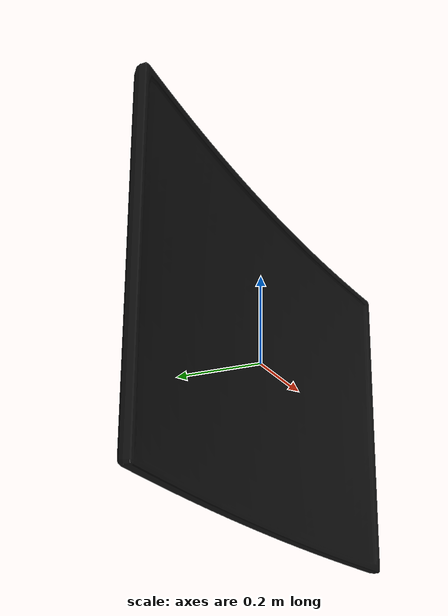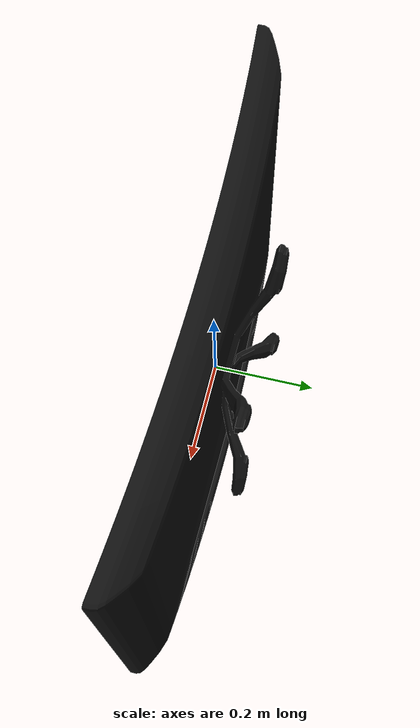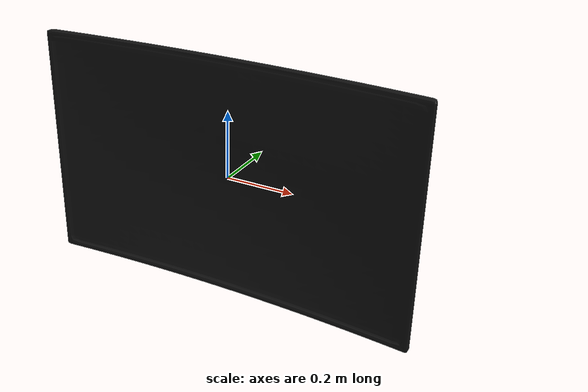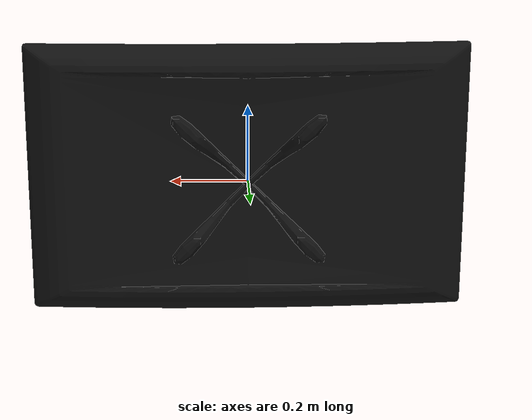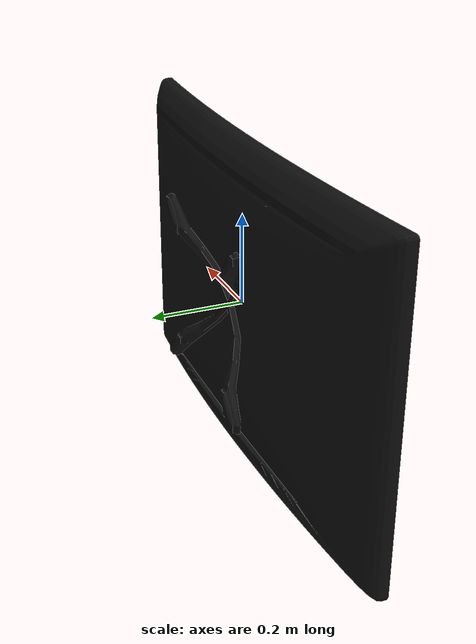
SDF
<?xml version="1.0" ?>
<sdf version="1.5">
  <model name="lc_tv">
    <static>true</static>
    <link name="tv_link">
        <pose>0 0 0 0 0 0</pose>
        <collision name="tv_collision">
         <geometry>
	        <box>
                <size>1.15 0.16 0.72</size>
            </box>
        </geometry>
        <surface>
          <friction>
            <ode>
              <mu>100</mu>
              <mu2>50</mu2>
            </ode>
          </friction>
        </surface>
      </collision>

      <visual name="tv_mesh">
        <cast_shadows>true</cast_shadows>
        <geometry>
            <mesh>
                <uri>model://lc_tv/meshes/tv.dae</uri>
            </mesh>
        </geometry>
	    <material>
        </material>
      </visual>
    </link>
  </model>
</sdf>
